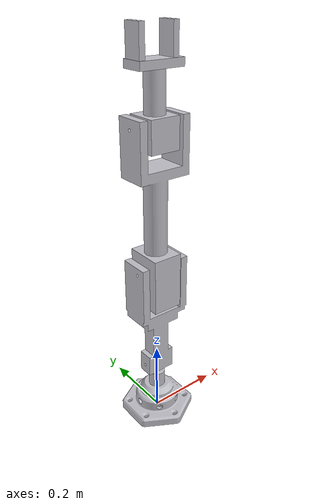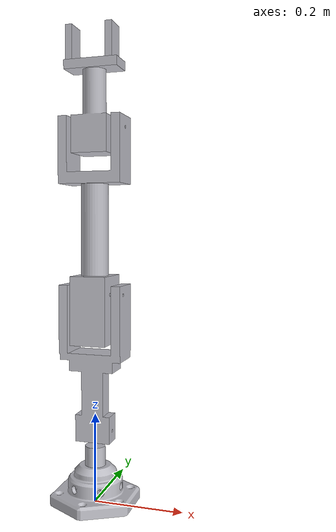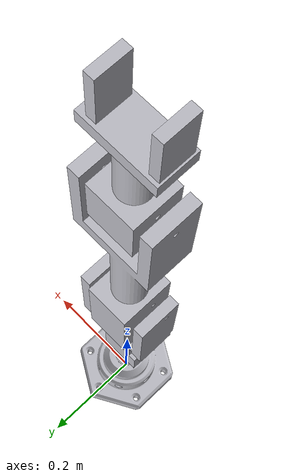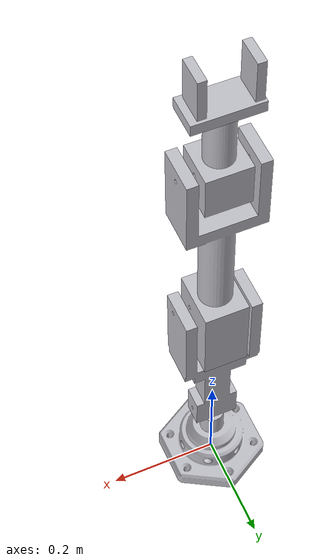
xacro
<?xml version="1.0" ?>
<robot name="raw" xmlns:xacro="http://www.ros.org/wiki/xacro">

<xacro:include filename="$(find robot_arm_description)/urdf/materials.xacro" />
<xacro:include filename="$(find robot_arm_description)/urdf/raw.trans" />
<xacro:include filename="$(find robot_arm_description)/urdf/raw.gazebo" />
<link name="base_link">
  <inertial>
    <origin xyz="1.8991555738630513e-17 -2.0890711312493566e-16 0.055989083792736496" rpy="0 0 0"/>
    <mass value="30.074559481801863"/>
    <inertia ixx="0.147066" iyy="0.155261" izz="0.177136" ixy="-0.0" iyz="0.0" ixz="0.0"/>
  </inertial>
  <visual>
    <origin xyz="0 0 0" rpy="0 0 0"/>
    <geometry>
      <mesh filename="package://robot_arm_description/meshes/base_link.stl" scale="0.001 0.001 0.001"/>
    </geometry>
    <material name="silver"/>
  </visual>
  <collision>
    <origin xyz="0 0 0" rpy="0 0 0"/>
    <geometry>
      <mesh filename="package://robot_arm_description/meshes/base_link.stl" scale="0.001 0.001 0.001"/>
    </geometry>
  </collision>
</link>

<link name="upper_arm_link_1">
  <inertial>
    <origin xyz="-0.0500323071626823 2.589793084947217e-05 0.15819769987038382" rpy="0 0 0"/>
    <mass value="9.141673277066278"/>
    <inertia ixx="0.086872" iyy="0.101251" izz="0.020863" ixy="-0.0" iyz="-3.5e-05" ixz="-2.2e-05"/>
  </inertial>
  <visual>
    <origin xyz="-0.05 -0.0 -0.165" rpy="0 0 0"/>
    <geometry>
      <mesh filename="package://robot_arm_description/meshes/upper_arm_link_1.stl" scale="0.001 0.001 0.001"/>
    </geometry>
    <material name="silver"/>
  </visual>
  <collision>
    <origin xyz="-0.05 -0.0 -0.165" rpy="0 0 0"/>
    <geometry>
      <mesh filename="package://robot_arm_description/meshes/upper_arm_link_1.stl" scale="0.001 0.001 0.001"/>
    </geometry>
  </collision>
</link>

<link name="elbow_link_1">
  <inertial>
    <origin xyz="-0.05 0.015050434490052968 -0.03511768047679675" rpy="0 0 0"/>
    <mass value="9.388433277016729"/>
    <inertia ixx="0.025466" iyy="0.022631" izz="0.01285" ixy="0.0" iyz="-1.7e-05" ixz="0.0"/>
  </inertial>
  <visual>
    <origin xyz="-0.05 0.015 -0.47" rpy="0 0 0"/>
    <geometry>
      <mesh filename="package://robot_arm_description/meshes/elbow_link_1.stl" scale="0.001 0.001 0.001"/>
    </geometry>
    <material name="silver"/>
  </visual>
  <collision>
    <origin xyz="-0.05 0.015 -0.47" rpy="0 0 0"/>
    <geometry>
      <mesh filename="package://robot_arm_description/meshes/elbow_link_1.stl" scale="0.001 0.001 0.001"/>
    </geometry>
  </collision>
</link>

<link name="under_arm_link_1">
  <inertial>
    <origin xyz="1.4818939979931135e-17 2.0968800071602552e-15 0.1831769084700421" rpy="0 0 0"/>
    <mass value="9.635687058030266"/>
    <inertia ixx="0.085866" iyy="0.097571" izz="0.019263" ixy="-0.0" iyz="-0.0" ixz="0.0"/>
  </inertial>
  <visual>
    <origin xyz="-0.0 -0.0 -0.51" rpy="0 0 0"/>
    <geometry>
      <mesh filename="package://robot_arm_description/meshes/under_arm_link_1.stl" scale="0.001 0.001 0.001"/>
    </geometry>
    <material name="silver"/>
  </visual>
  <collision>
    <origin xyz="-0.0 -0.0 -0.51" rpy="0 0 0"/>
    <geometry>
      <mesh filename="package://robot_arm_description/meshes/under_arm_link_1.stl" scale="0.001 0.001 0.001"/>
    </geometry>
  </collision>
</link>

<link name="wrist_link_1">
  <inertial>
    <origin xyz="-0.05 -6.011587699924609e-15 0.010892669596675675" rpy="0 0 0"/>
    <mass value="5.605606933175597"/>
    <inertia ixx="0.015241" iyy="0.015224" izz="0.004801" ixy="0.0" iyz="0.0" ixz="0.0"/>
  </inertial>
  <visual>
    <origin xyz="-0.05 -0.0 -0.83" rpy="0 0 0"/>
    <geometry>
      <mesh filename="package://robot_arm_description/meshes/wrist_link_1.stl" scale="0.001 0.001 0.001"/>
    </geometry>
    <material name="silver"/>
  </visual>
  <collision>
    <origin xyz="-0.05 -0.0 -0.83" rpy="0 0 0"/>
    <geometry>
      <mesh filename="package://robot_arm_description/meshes/wrist_link_1.stl" scale="0.001 0.001 0.001"/>
    </geometry>
  </collision>
</link>

<link name="hand_link_1">
  <inertial>
    <origin xyz="0.0 -6.927791673660977e-15 0.010000000000000009" rpy="0 0 0"/>
    <mass value="1.1303999999999998"/>
    <inertia ixx="0.000377" iyy="0.001394" izz="0.001696" ixy="-0.0" iyz="-0.0" ixz="0.0"/>
  </inertial>
  <visual>
    <origin xyz="-0.0 0.0 -0.955" rpy="0 0 0"/>
    <geometry>
      <mesh filename="package://robot_arm_description/meshes/hand_link_1.stl" scale="0.001 0.001 0.001"/>
    </geometry>
    <material name="silver"/>
  </visual>
  <collision>
    <origin xyz="-0.0 0.0 -0.955" rpy="0 0 0"/>
    <geometry>
      <mesh filename="package://robot_arm_description/meshes/hand_link_1.stl" scale="0.001 0.001 0.001"/>
    </geometry>
  </collision>
</link>

<link name="tump_link_1">
  <inertial>
    <origin xyz="-0.019999999999999997 -7.200166389035681e-15 0.03749999999999998" rpy="0 0 0"/>
    <mass value="0.44156249999999997"/>
    <inertia ixx="0.000299" iyy="0.000215" izz="0.0001" ixy="-0.0" iyz="-0.0" ixz="0.0"/>
  </inertial>
  <visual>
    <origin xyz="-0.06 0.0 -0.975" rpy="0 0 0"/>
    <geometry>
      <mesh filename="package://robot_arm_description/meshes/tump_link_1.stl" scale="0.001 0.001 0.001"/>
    </geometry>
    <material name="silver"/>
  </visual>
  <collision>
    <origin xyz="-0.06 0.0 -0.975" rpy="0 0 0"/>
    <geometry>
      <mesh filename="package://robot_arm_description/meshes/tump_link_1.stl" scale="0.001 0.001 0.001"/>
    </geometry>
  </collision>
</link>

<link name="finger_link_1">
  <inertial>
    <origin xyz="0.009999999999999995 -7.200166389035681e-15 0.03749999999999998" rpy="0 0 0"/>
    <mass value="0.44156249999999997"/>
    <inertia ixx="0.000299" iyy="0.000215" izz="0.0001" ixy="0.0" iyz="-0.0" ixz="-0.0"/>
  </inertial>
  <visual>
    <origin xyz="0.06 0.0 -0.975" rpy="0 0 0"/>
    <geometry>
      <mesh filename="package://robot_arm_description/meshes/finger_link_1.stl" scale="0.001 0.001 0.001"/>
    </geometry>
    <material name="silver"/>
  </visual>
  <collision>
    <origin xyz="0.06 0.0 -0.975" rpy="0 0 0"/>
    <geometry>
      <mesh filename="package://robot_arm_description/meshes/finger_link_1.stl" scale="0.001 0.001 0.001"/>
    </geometry>
  </collision>
</link>

<joint name="base_link_joint" type="revolute">
  <origin xyz="0.05 0.0 0.165" rpy="0 0 0"/>
  <parent link="base_link"/>
  <child link="upper_arm_link_1"/>
  <axis xyz="1.0 0.0 0.0"/>
  <limit upper="1.658063" lower="-1.658063" effort="100" velocity="100"/>
</joint>

<joint name="elbow_joint" type="revolute">
  <origin xyz="0.0 -0.015 0.305" rpy="0 0 0"/>
  <parent link="upper_arm_link_1"/>
  <child link="elbow_link_1"/>
  <axis xyz="1.0 0.0 0.0"/>
  <limit upper="1.919862" lower="-1.919862" effort="100" velocity="100"/>
</joint>

<joint name="under_arm_joint" type="revolute">
  <origin xyz="-0.05 0.015 0.04" rpy="0 0 0"/>
  <parent link="elbow_link_1"/>
  <child link="under_arm_link_1"/>
  <axis xyz="0.0 0.0 1.0"/>
  <limit upper="1.570796" lower="-1.570796" effort="100" velocity="100"/>
</joint>

<joint name="wrist_joint" type="revolute">
  <origin xyz="0.05 0.0 0.32" rpy="0 0 0"/>
  <parent link="under_arm_link_1"/>
  <child link="wrist_link_1"/>
  <axis xyz="1.0 0.0 0.0"/>
  <limit upper="1.570796" lower="-1.570796" effort="100" velocity="100"/>
</joint>

<joint name="hand_joint" type="revolute">
  <origin xyz="-0.05 -0.0 0.125" rpy="0 0 0"/>
  <parent link="wrist_link_1"/>
  <child link="hand_link_1"/>
  <axis xyz="0.0 -0.0 1.0"/>
  <limit upper="0.785398" lower="-0.785398" effort="100" velocity="100"/>
</joint>

<joint name="trump_joint" type="fixed">
  <origin xyz="0.06 0.0 0.02" rpy="0 0 0"/>
  <parent link="hand_link_1"/>
  <child link="tump_link_1"/>
</joint>

<joint name="finger_joint" type="fixed">
  <origin xyz="-0.06 0.0 0.02" rpy="0 0 0"/>
  <parent link="hand_link_1"/>
  <child link="finger_link_1"/>
</joint>

</robot>

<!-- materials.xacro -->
<robot name="robot_arm" xmlns:xacro="http://www.ros.org/wiki/xacro" >

<material name="silver_default">
  <color rgba="0.700 0.700 0.700 1.000"/>
</material>
<material name="plastic_glossy_black">
  <color rgba="0.09803921568627451 0.09803921568627451 0.09803921568627451 1.0"/>
</material>
<material name="opaque202209238">
  <color rgba="0.792156862745098 0.8196078431372549 0.9333333333333333 1.0"/>
</material>
<material name="steel_satin">
  <color rgba="0.6274509803921569 0.6274509803921569 0.6274509803921569 1.0"/>
</material>
<material name="opaque1965339">
  <color rgba="0.7686274509803922 0.20784313725490197 0.15294117647058825 1.0"/>
</material>
<material name="aluminum_satin">
  <color rgba="0.9607843137254902 0.9607843137254902 0.9647058823529412 1.0"/>
</material>
<material name="plastic_matte_blue">
  <color rgba="0.18823529411764706 0.23137254901960785 0.5882352941176471 1.0"/>
</material>
<material name="opaque160160160">
  <color rgba="0.6274509803921569 0.6274509803921569 0.6274509803921569 1.0"/>
</material>

</robot>

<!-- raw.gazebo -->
<robot name="raw" xmlns:xacro="http://www.ros.org/wiki/xacro" >

<xacro:property name="body_color" value="Gazebo/Silver" />

<gazebo>
  <plugin name="control" filename="libgazebo_ros_control.so"/>
</gazebo>
<gazebo reference="base_link">
  <material>${body_color}</material>
  <mu1>0.2</mu1>
  <mu2>0.2</mu2>
  <selfCollide>true</selfCollide>
  <gravity>true</gravity>
</gazebo>

<gazebo reference="upper_arm_link_1">
  <material>${body_color}</material>
  <mu1>0.2</mu1>
  <mu2>0.2</mu2>
  <selfCollide>true</selfCollide>
</gazebo>

<gazebo reference="elbow_link_1">
  <material>${body_color}</material>
  <mu1>0.2</mu1>
  <mu2>0.2</mu2>
  <selfCollide>true</selfCollide>
</gazebo>

<gazebo reference="under_arm_link_1">
  <material>${body_color}</material>
  <mu1>0.2</mu1>
  <mu2>0.2</mu2>
  <selfCollide>true</selfCollide>
</gazebo>

<gazebo reference="wrist_link_1">
  <material>${body_color}</material>
  <mu1>0.2</mu1>
  <mu2>0.2</mu2>
  <selfCollide>true</selfCollide>
</gazebo>

<gazebo reference="hand_link_1">
  <material>${body_color}</material>
  <mu1>0.2</mu1>
  <mu2>0.2</mu2>
  <selfCollide>true</selfCollide>
</gazebo>

<gazebo reference="tump_link_1">
  <material>${body_color}</material>
  <mu1>0.2</mu1>
  <mu2>0.2</mu2>
  <selfCollide>true</selfCollide>
</gazebo>

<gazebo reference="finger_link_1">
  <material>${body_color}</material>
  <mu1>0.2</mu1>
  <mu2>0.2</mu2>
  <selfCollide>true</selfCollide>
</gazebo>

</robot>
